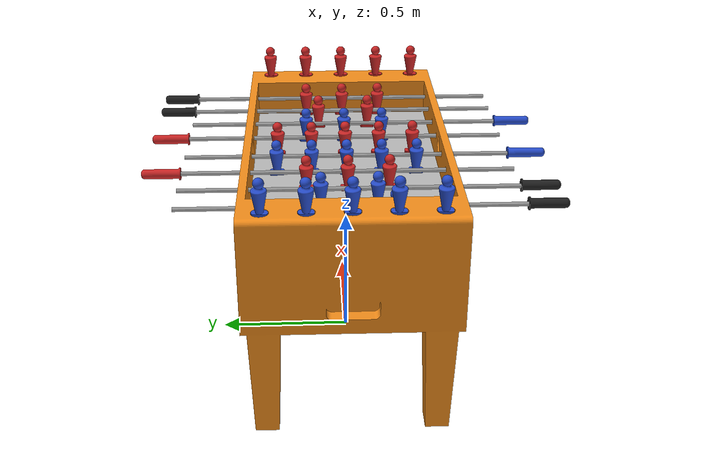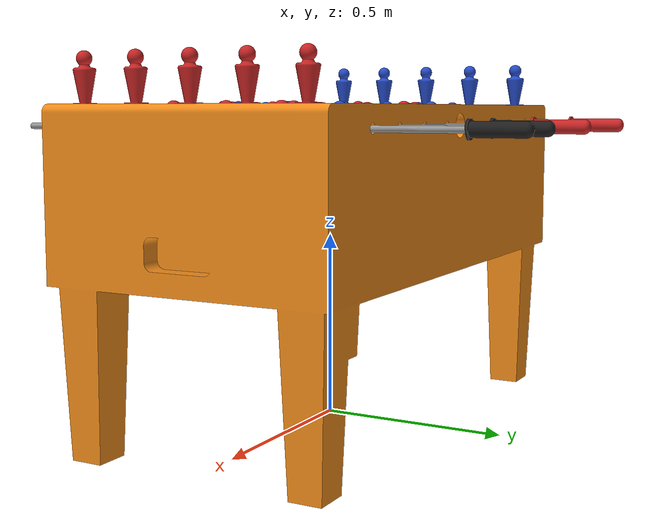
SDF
<?xml version='1.0'?>

<sdf version='1.5'>
  <model name='Foosball'>
    <static>0</static>

    <link name='table'>
      <pose>0 0 0.425 0 0 0</pose>
      <inertial>
        <pose>0 0 -1 0 0 0</pose>
        <mass>50</mass>
  </inertial>

      <visual name='table'>
        <pose>0 0 0 1.5707963267948966 0 0</pose>
        <geometry>
          <mesh>
            <uri>model://foosball/meshes/table.dae</uri>
          </mesh>
        </geometry>
        <material>
          <script>
            <uri>file://media/materials/scripts/gazebo.material</uri>
            <name>Gazebo/Orange</name>
          </script>
        </material>
      </visual>

      <!-- table collisions on each player's side -->

        <collision name="sideRed">
          <pose>0 -0.36 0.34700000000000003 0 0 0</pose>
          <geometry>
            <box>
              <size>1.1 0.02 0.15</size>
            </box>
          </geometry>
          <surface>
            <bounce>
              <restitution_coefficient>0.5</restitution_coefficient>
              <threshold>0</threshold>
            </bounce>
            <contact>
              <ode>
                <min_depth>0.0010000</min_depth>
              </ode>
            </contact>
          </surface>
        </collision>

        <collision name="sideBlue">
          <pose>0 0.36 0.34700000000000003 0 0 0</pose>
          <geometry>
            <box>
              <size>1.1 0.02 0.15</size>
            </box>
          </geometry>
          <surface>
            <bounce>
              <restitution_coefficient>0.5</restitution_coefficient>
              <threshold>0</threshold>
            </bounce>
            <contact>
              <ode>
                <min_depth>0.0010000</min_depth>
              </ode>
            </contact>
          </surface>
        </collision>

      <!-- /table side collisions -->

      <!-- table collisions on each goal side -->

        <collision name="goalRed">
          <pose>0.55 0 0.34700000000000003 0 1.5707963267948966 0</pose>
          <geometry>
            <polyline>
              <height>0.02</height>
              <point>0.075 -0.385</point>
              <point>-0.075 -0.385</point>
              <point>-0.075 0.385</point>
              <point>0.075 0.385</point>
              <point>0.075 0.09</point>
              <point>-0.0019 0.09</point>
              <point>-0.0019 -0.09</point>
              <point>0.075 -0.09</point>
            </polyline>
          </geometry>
          <surface>
            <bounce>
              <restitution_coefficient>0.5</restitution_coefficient>
              <threshold>0</threshold>
            </bounce>
            <contact>
              <ode>
                <min_depth>0.0010000</min_depth>
              </ode>
            </contact>
          </surface>
        </collision>

        <collision name="goalBlue">
          <pose>-0.55 0 0.34700000000000003 3.141592653589793 1.5707963267948966 0</pose>
          <geometry>
            <polyline>
              <height>0.02</height>
              <point>0.075 -0.385</point>
              <point>-0.075 -0.385</point>
              <point>-0.075 0.385</point>
              <point>0.075 0.385</point>
              <point>0.075 0.09</point>
              <point>-0.0019 0.09</point>
              <point>-0.0019 -0.09</point>
              <point>0.075 -0.09</point>
            </polyline>
          </geometry>
          <surface>
            <bounce>
              <restitution_coefficient>0.5</restitution_coefficient>
              <threshold>0</threshold>
            </bounce>
            <contact>
              <ode>
                <min_depth>0.0010000</min_depth>
              </ode>
            </contact>
          </surface>
        </collision>

      <!-- /table goal collisions -->

      <!-- table ground -->
      <visual name='ground'>
        <pose>0 0 0.28200000000000003 0 0 0</pose>
        <geometry>
          <box>
            <size>1.1 0.73 0.02</size>
          </box>
        </geometry>
        <material>
          <script>
            <uri>model://foosball/materials/scripts/</uri>
            <uri>model://foosball/materials/textures/</uri>
            <name>Foosball/Field</name>
          </script>
        </material>
      </visual>
      <collision name='ground'>
        <pose>0 0 0.28200000000000003 0 0 0</pose>
        <geometry>
          <box>
            <size>1.375 0.73 0.02</size>
          </box>
        </geometry>
        <surface>
          <contact>
            <ode>
              <max_vel>0.500</max_vel>
            </ode>
          </contact>
        </surface>
      </collision>
      <!-- /table ground -->

            <visual name="goal_visual_Blue_0" >
              <pose>-0.65 -0.3 0.49 0 0 0</pose>
              <geometry>
                <mesh>
                  <uri>model://foosball/meshes/player.dae</uri>
                </mesh>
              </geometry>
              <material>
                <script><name>Gazebo/Blue</name></script>
              </material>
            </visual>

            <visual name="goal_visual_Blue_1" >
              <pose>-0.65 -0.15 0.49 0 0 0</pose>
              <geometry>
                <mesh>
                  <uri>model://foosball/meshes/player.dae</uri>
                </mesh>
              </geometry>
              <material>
                <script><name>Gazebo/Blue</name></script>
              </material>
            </visual>

            <visual name="goal_visual_Blue_2" >
              <pose>-0.65 0.0 0.49 0 0 0</pose>
              <geometry>
                <mesh>
                  <uri>model://foosball/meshes/player.dae</uri>
                </mesh>
              </geometry>
              <material>
                <script><name>Gazebo/Blue</name></script>
              </material>
            </visual>

            <visual name="goal_visual_Blue_3" >
              <pose>-0.65 0.15 0.49 0 0 0</pose>
              <geometry>
                <mesh>
                  <uri>model://foosball/meshes/player.dae</uri>
                </mesh>
              </geometry>
              <material>
                <script><name>Gazebo/Blue</name></script>
              </material>
            </visual>

            <visual name="goal_visual_Blue_4" >
              <pose>-0.65 0.3 0.49 0 0 0</pose>
              <geometry>
                <mesh>
                  <uri>model://foosball/meshes/player.dae</uri>
                </mesh>
              </geometry>
              <material>
                <script><name>Gazebo/Blue</name></script>
              </material>
            </visual>

            <visual name="goal_visual_Red_0" >
              <pose>0.65 0.3 0.49 0 0 0</pose>
              <geometry>
                <mesh>
                  <uri>model://foosball/meshes/player.dae</uri>
                </mesh>
              </geometry>
              <material>
                <script><name>Gazebo/Red</name></script>
              </material>
            </visual>

            <visual name="goal_visual_Red_1" >
              <pose>0.65 0.15 0.49 0 0 0</pose>
              <geometry>
                <mesh>
                  <uri>model://foosball/meshes/player.dae</uri>
                </mesh>
              </geometry>
              <material>
                <script><name>Gazebo/Red</name></script>
              </material>
            </visual>

            <visual name="goal_visual_Red_2" >
              <pose>0.65 -0.0 0.49 0 0 0</pose>
              <geometry>
                <mesh>
                  <uri>model://foosball/meshes/player.dae</uri>
                </mesh>
              </geometry>
              <material>
                <script><name>Gazebo/Red</name></script>
              </material>
            </visual>

            <visual name="goal_visual_Red_3" >
              <pose>0.65 -0.15 0.49 0 0 0</pose>
              <geometry>
                <mesh>
                  <uri>model://foosball/meshes/player.dae</uri>
                </mesh>
              </geometry>
              <material>
                <script><name>Gazebo/Red</name></script>
              </material>
            </visual>

            <visual name="goal_visual_Red_4" >
              <pose>0.65 -0.3 0.49 0 0 0</pose>
              <geometry>
                <mesh>
                  <uri>model://foosball/meshes/player.dae</uri>
                </mesh>
              </geometry>
              <material>
                <script><name>Gazebo/Red</name></script>
              </material>
            </visual>

    </link>

    <!-- joint fixing the table to the world -->
    <joint name='table_world' type='universal'>
      <parent>world</parent>
      <child>table</child>
      <axis>
        <xyz>1 0 0</xyz>
        <limit>
          <lower>-0.03</lower>
          <upper>0.03</upper>
        </limit>
        <dynamics>
          <damping>500</damping>
        </dynamics>
      </axis>
      <axis2>
        <xyz>0 1 0</xyz>
        <limit>
          <lower>-0.03</lower>
          <upper>0.03</upper>
        </limit>
        <dynamics>
          <damping>500</damping>
        </dynamics>
      </axis2>
      <pose>0 0 0 0 0 0</pose>
    </joint>

    <!-- two teams -->

      <!-- 4 rods per team -->

        <!-- shaft bridge is a dummy link between the revolute and prismatic joints -->
        <link name="shaftBlue0_bridge">
          <pose>-0.508 0 0.8 1.5707963267948966 0 0</pose>
        </link>
        <!-- /shaft bridge -->

        <!-- shaft contains the rod and players -->
        <link name="shaftBlue0">
          <pose>-0.508 0 0.8 1.5707963267948966 0 0</pose>

          <visual name='rod'>
            <pose>0 0 0 0 0 0</pose>
            <geometry>
              <cylinder>
                <radius>0.00779907</radius>
                <length>1.2</length>
              </cylinder>
            </geometry>
            <material>
              <script>
                <uri>file://media/materials/scripts/gazebo.material</uri>
                <name>Gazebo/Grey</name>
              </script>
            </material>
          </visual>

          <visual name='handle'>
            <pose>0 0 0.6 0 -3.141592653589793 0</pose>
            <geometry>
              <mesh>
                <uri>model://foosball/meshes/handle.dae</uri>
              </mesh>
            </geometry>
            <material>
              <!-- highlight active rods -->

                <script><name>Gazebo/Black</name></script>

            </material>
          </visual>

          <collision name='rod'>
            <pose>0 0 0 0 0 0</pose>
            <geometry>
              <cylinder>
                <radius>0.00779907</radius>
                <length>1.2</length>
              </cylinder>
            </geometry>
          </collision>

          <!-- center player -->

            <visual name='player_center'>
              <pose>0 0 0 -1.5707963267948966 0 0</pose>
              <geometry>
                <mesh>
                  <uri>model://foosball/meshes/player.dae</uri>
                </mesh>
              </geometry>
              <material>
                <script><name>Gazebo/Blue</name></script>
              </material>
            </visual>

            <collision name='player_center'>
              <pose>0 -0.005 0 0 0 0</pose>
              <geometry> <box> <size>0.045 0.13 0.055</size> </box> </geometry>
            </collision>

          <!-- /center player -->

          <!-- two players between the center player and the side players -->

          <!-- /middle players -->

          <!-- side players: two players in the extremes of the rod -->

            <visual name='player_side_1'>
              <pose>0 0 0.15 -1.5707963267948966 0 0</pose>
              <geometry>
                <mesh>
                  <uri>model://foosball/meshes/player.dae</uri>
                </mesh>
              </geometry>
              <material>
                <script><name>Gazebo/Blue</name></script>
              </material>
            </visual>

            <collision name='player_side_1'>
              <pose>0 -0.005 0.15 0 0 0</pose>
              <geometry> <box> <size>0.045 0.13 0.055</size> </box> </geometry>
            </collision>

            <visual name='player_side_2'>
              <pose>0 0 -0.15 -1.5707963267948966 0 0</pose>
              <geometry>
                <mesh>
                  <uri>model://foosball/meshes/player.dae</uri>
                </mesh>
              </geometry>
              <material>
                <script><name>Gazebo/Blue</name></script>
              </material>
            </visual>

            <collision name='player_side_2'>
              <pose>0 -0.005 -0.15 0 0 0</pose>
              <geometry> <box> <size>0.045 0.13 0.055</size> </box> </geometry>
            </collision>

          <!-- /side players -->

        </link>
        <!-- /shaft -->

        <!-- prismatic joint -->
        <joint name="transBlue0" type="prismatic">
          <pose> 0 0 0 0 -3.141592653589793 0</pose>
          <parent>world</parent>
          <child>shaftBlue0_bridge</child>
          <axis>
            <xyz>0 0 1</xyz>
            <limit>
              <lower>-0.18</lower>
              <upper>0.18</upper>
            </limit>
          </axis>
        </joint>
        <!-- /prismatic joint -->

        <!-- /revolute joint -->
        <joint name="rotBlue0" type="revolute">
          <pose> 0 0 0 0 -3.141592653589793 0</pose>
          <parent>shaftBlue0_bridge</parent>
          <child>shaftBlue0</child>
          <axis>
            <xyz>0 0 1</xyz>
            <limit>
              <lower>-1000</lower>
              <upper>1000</upper>
            </limit>
          </axis>
        </joint>
        <!-- /revolute joint -->

        <!-- shaft bridge is a dummy link between the revolute and prismatic joints -->
        <link name="shaftBlue1_bridge">
          <pose>-0.3675 0 0.8 1.5707963267948966 0 0</pose>
        </link>
        <!-- /shaft bridge -->

        <!-- shaft contains the rod and players -->
        <link name="shaftBlue1">
          <pose>-0.3675 0 0.8 1.5707963267948966 0 0</pose>

          <visual name='rod'>
            <pose>0 0 0 0 0 0</pose>
            <geometry>
              <cylinder>
                <radius>0.00779907</radius>
                <length>1.2</length>
              </cylinder>
            </geometry>
            <material>
              <script>
                <uri>file://media/materials/scripts/gazebo.material</uri>
                <name>Gazebo/Grey</name>
              </script>
            </material>
          </visual>

          <visual name='handle'>
            <pose>0 0 0.6 0 -3.141592653589793 0</pose>
            <geometry>
              <mesh>
                <uri>model://foosball/meshes/handle.dae</uri>
              </mesh>
            </geometry>
            <material>
              <!-- highlight active rods -->

                <script><name>Gazebo/Black</name></script>

            </material>
          </visual>

          <collision name='rod'>
            <pose>0 0 0 0 0 0</pose>
            <geometry>
              <cylinder>
                <radius>0.00779907</radius>
                <length>1.2</length>
              </cylinder>
            </geometry>
          </collision>

          <!-- center player -->

          <!-- /center player -->

          <!-- two players between the center player and the side players -->

          <!-- /middle players -->

          <!-- side players: two players in the extremes of the rod -->

            <visual name='player_side_1'>
              <pose>0 0 0.1 -1.5707963267948966 0 0</pose>
              <geometry>
                <mesh>
                  <uri>model://foosball/meshes/player.dae</uri>
                </mesh>
              </geometry>
              <material>
                <script><name>Gazebo/Blue</name></script>
              </material>
            </visual>

            <collision name='player_side_1'>
              <pose>0 -0.005 0.1 0 0 0</pose>
              <geometry> <box> <size>0.045 0.13 0.055</size> </box> </geometry>
            </collision>

            <visual name='player_side_2'>
              <pose>0 0 -0.1 -1.5707963267948966 0 0</pose>
              <geometry>
                <mesh>
                  <uri>model://foosball/meshes/player.dae</uri>
                </mesh>
              </geometry>
              <material>
                <script><name>Gazebo/Blue</name></script>
              </material>
            </visual>

            <collision name='player_side_2'>
              <pose>0 -0.005 -0.1 0 0 0</pose>
              <geometry> <box> <size>0.045 0.13 0.055</size> </box> </geometry>
            </collision>

          <!-- /side players -->

        </link>
        <!-- /shaft -->

        <!-- prismatic joint -->
        <joint name="transBlue1" type="prismatic">
          <pose> 0 0 0 0 -3.141592653589793 0</pose>
          <parent>world</parent>
          <child>shaftBlue1_bridge</child>
          <axis>
            <xyz>0 0 1</xyz>
            <limit>
              <lower>-0.23</lower>
              <upper>0.23</upper>
            </limit>
          </axis>
        </joint>
        <!-- /prismatic joint -->

        <!-- /revolute joint -->
        <joint name="rotBlue1" type="revolute">
          <pose> 0 0 0 0 -3.141592653589793 0</pose>
          <parent>shaftBlue1_bridge</parent>
          <child>shaftBlue1</child>
          <axis>
            <xyz>0 0 1</xyz>
            <limit>
              <lower>-1000</lower>
              <upper>1000</upper>
            </limit>
          </axis>
        </joint>
        <!-- /revolute joint -->

        <!-- shaft bridge is a dummy link between the revolute and prismatic joints -->
        <link name="shaftBlue2_bridge">
          <pose>-0.087 0 0.8 1.5707963267948966 0 0</pose>
        </link>
        <!-- /shaft bridge -->

        <!-- shaft contains the rod and players -->
        <link name="shaftBlue2">
          <pose>-0.087 0 0.8 1.5707963267948966 0 0</pose>

          <visual name='rod'>
            <pose>0 0 0 0 0 0</pose>
            <geometry>
              <cylinder>
                <radius>0.00779907</radius>
                <length>1.2</length>
              </cylinder>
            </geometry>
            <material>
              <script>
                <uri>file://media/materials/scripts/gazebo.material</uri>
                <name>Gazebo/Grey</name>
              </script>
            </material>
          </visual>

          <visual name='handle'>
            <pose>0 0 0.6 0 -3.141592653589793 0</pose>
            <geometry>
              <mesh>
                <uri>model://foosball/meshes/handle.dae</uri>
              </mesh>
            </geometry>
            <material>
              <!-- highlight active rods -->

                <script><name>Gazebo/Blue</name></script>

            </material>
          </visual>

          <collision name='rod'>
            <pose>0 0 0 0 0 0</pose>
            <geometry>
              <cylinder>
                <radius>0.00779907</radius>
                <length>1.2</length>
              </cylinder>
            </geometry>
          </collision>

          <!-- center player -->

            <visual name='player_center'>
              <pose>0 0 0 -1.5707963267948966 0 0</pose>
              <geometry>
                <mesh>
                  <uri>model://foosball/meshes/player.dae</uri>
                </mesh>
              </geometry>
              <material>
                <script><name>Gazebo/Blue</name></script>
              </material>
            </visual>

            <collision name='player_center'>
              <pose>0 -0.005 0 0 0 0</pose>
              <geometry> <box> <size>0.045 0.13 0.055</size> </box> </geometry>
            </collision>

          <!-- /center player -->

          <!-- two players between the center player and the side players -->

            <visual name='player_mid_1'>
              <pose>0 0 0.26 -1.5707963267948966 0 0</pose>
              <geometry>
                <mesh>
                  <uri>model://foosball/meshes/player.dae</uri>
                </mesh>
              </geometry>
              <material>
                <script>
                  <name>Gazebo/Blue</name>
                </script>
              </material>
            </visual>

            <collision name='player_mid_1'>
              <pose>0 -0.005 0.26 0 0 0</pose>
              <geometry> <box> <size>0.045 0.13 0.055</size> </box> </geometry>
            </collision>

            <visual name='player_mid_2'>
              <pose>0 0 -0.26 -1.5707963267948966 0 0</pose>
              <geometry>
                <mesh>
                  <uri>model://foosball/meshes/player.dae</uri>
                </mesh>
              </geometry>
              <material>
                <script><name>Gazebo/Blue</name></script>
              </material>
            </visual>

            <collision name='player_mid_2'>
              <pose>0 -0.005 -0.26 0 0 0</pose>
              <geometry> <box> <size>0.045 0.13 0.055</size> </box> </geometry>
            </collision>

          <!-- /middle players -->

          <!-- side players: two players in the extremes of the rod -->

            <visual name='player_side_1'>
              <pose>0 0 0.13 -1.5707963267948966 0 0</pose>
              <geometry>
                <mesh>
                  <uri>model://foosball/meshes/player.dae</uri>
                </mesh>
              </geometry>
              <material>
                <script><name>Gazebo/Blue</name></script>
              </material>
            </visual>

            <collision name='player_side_1'>
              <pose>0 -0.005 0.13 0 0 0</pose>
              <geometry> <box> <size>0.045 0.13 0.055</size> </box> </geometry>
            </collision>

            <visual name='player_side_2'>
              <pose>0 0 -0.13 -1.5707963267948966 0 0</pose>
              <geometry>
                <mesh>
                  <uri>model://foosball/meshes/player.dae</uri>
                </mesh>
              </geometry>
              <material>
                <script><name>Gazebo/Blue</name></script>
              </material>
            </visual>

            <collision name='player_side_2'>
              <pose>0 -0.005 -0.13 0 0 0</pose>
              <geometry> <box> <size>0.045 0.13 0.055</size> </box> </geometry>
            </collision>

          <!-- /side players -->

        </link>
        <!-- /shaft -->

        <!-- prismatic joint -->
        <joint name="transBlue2" type="prismatic">
          <pose> 0 0 0 0 -3.141592653589793 0</pose>
          <parent>world</parent>
          <child>shaftBlue2_bridge</child>
          <axis>
            <xyz>0 0 1</xyz>
            <limit>
              <lower>-0.07</lower>
              <upper>0.07</upper>
            </limit>
          </axis>
        </joint>
        <!-- /prismatic joint -->

        <!-- /revolute joint -->
        <joint name="rotBlue2" type="revolute">
          <pose> 0 0 0 0 -3.141592653589793 0</pose>
          <parent>shaftBlue2_bridge</parent>
          <child>shaftBlue2</child>
          <axis>
            <xyz>0 0 1</xyz>
            <limit>
              <lower>-1000</lower>
              <upper>1000</upper>
            </limit>
          </axis>
        </joint>
        <!-- /revolute joint -->

        <!-- shaft bridge is a dummy link between the revolute and prismatic joints -->
        <link name="shaftBlue3_bridge">
          <pose>0.227 0 0.8 1.5707963267948966 0 0</pose>
        </link>
        <!-- /shaft bridge -->

        <!-- shaft contains the rod and players -->
        <link name="shaftBlue3">
          <pose>0.227 0 0.8 1.5707963267948966 0 0</pose>

          <visual name='rod'>
            <pose>0 0 0 0 0 0</pose>
            <geometry>
              <cylinder>
                <radius>0.00779907</radius>
                <length>1.2</length>
              </cylinder>
            </geometry>
            <material>
              <script>
                <uri>file://media/materials/scripts/gazebo.material</uri>
                <name>Gazebo/Grey</name>
              </script>
            </material>
          </visual>

          <visual name='handle'>
            <pose>0 0 0.6 0 -3.141592653589793 0</pose>
            <geometry>
              <mesh>
                <uri>model://foosball/meshes/handle.dae</uri>
              </mesh>
            </geometry>
            <material>
              <!-- highlight active rods -->

                <script><name>Gazebo/Blue</name></script>

            </material>
          </visual>

          <collision name='rod'>
            <pose>0 0 0 0 0 0</pose>
            <geometry>
              <cylinder>
                <radius>0.00779907</radius>
                <length>1.2</length>
              </cylinder>
            </geometry>
          </collision>

          <!-- center player -->

            <visual name='player_center'>
              <pose>0 0 0 -1.5707963267948966 0 0</pose>
              <geometry>
                <mesh>
                  <uri>model://foosball/meshes/player.dae</uri>
                </mesh>
              </geometry>
              <material>
                <script><name>Gazebo/Blue</name></script>
              </material>
            </visual>

            <collision name='player_center'>
              <pose>0 -0.005 0 0 0 0</pose>
              <geometry> <box> <size>0.045 0.13 0.055</size> </box> </geometry>
            </collision>

          <!-- /center player -->

          <!-- two players between the center player and the side players -->

          <!-- /middle players -->

          <!-- side players: two players in the extremes of the rod -->

            <visual name='player_side_1'>
              <pose>0 0 0.15 -1.5707963267948966 0 0</pose>
              <geometry>
                <mesh>
                  <uri>model://foosball/meshes/player.dae</uri>
                </mesh>
              </geometry>
              <material>
                <script><name>Gazebo/Blue</name></script>
              </material>
            </visual>

            <collision name='player_side_1'>
              <pose>0 -0.005 0.15 0 0 0</pose>
              <geometry> <box> <size>0.045 0.13 0.055</size> </box> </geometry>
            </collision>

            <visual name='player_side_2'>
              <pose>0 0 -0.15 -1.5707963267948966 0 0</pose>
              <geometry>
                <mesh>
                  <uri>model://foosball/meshes/player.dae</uri>
                </mesh>
              </geometry>
              <material>
                <script><name>Gazebo/Blue</name></script>
              </material>
            </visual>

            <collision name='player_side_2'>
              <pose>0 -0.005 -0.15 0 0 0</pose>
              <geometry> <box> <size>0.045 0.13 0.055</size> </box> </geometry>
            </collision>

          <!-- /side players -->

        </link>
        <!-- /shaft -->

        <!-- prismatic joint -->
        <joint name="transBlue3" type="prismatic">
          <pose> 0 0 0 0 -3.141592653589793 0</pose>
          <parent>world</parent>
          <child>shaftBlue3_bridge</child>
          <axis>
            <xyz>0 0 1</xyz>
            <limit>
              <lower>-0.18</lower>
              <upper>0.18</upper>
            </limit>
          </axis>
        </joint>
        <!-- /prismatic joint -->

        <!-- /revolute joint -->
        <joint name="rotBlue3" type="revolute">
          <pose> 0 0 0 0 -3.141592653589793 0</pose>
          <parent>shaftBlue3_bridge</parent>
          <child>shaftBlue3</child>
          <axis>
            <xyz>0 0 1</xyz>
            <limit>
              <lower>-1000</lower>
              <upper>1000</upper>
            </limit>
          </axis>
        </joint>
        <!-- /revolute joint -->

      <!-- /shafts -->

      <!-- 4 rods per team -->

        <!-- shaft bridge is a dummy link between the revolute and prismatic joints -->
        <link name="shaftRed0_bridge">
          <pose>0.508 0 0.8 1.5707963267948966 0 0</pose>
        </link>
        <!-- /shaft bridge -->

        <!-- shaft contains the rod and players -->
        <link name="shaftRed0">
          <pose>0.508 0 0.8 1.5707963267948966 0 0</pose>

          <visual name='rod'>
            <pose>0 0 0 0 0 0</pose>
            <geometry>
              <cylinder>
                <radius>0.00779907</radius>
                <length>1.2</length>
              </cylinder>
            </geometry>
            <material>
              <script>
                <uri>file://media/materials/scripts/gazebo.material</uri>
                <name>Gazebo/Grey</name>
              </script>
            </material>
          </visual>

          <visual name='handle'>
            <pose>0 0 -0.6 0 0 0</pose>
            <geometry>
              <mesh>
                <uri>model://foosball/meshes/handle.dae</uri>
              </mesh>
            </geometry>
            <material>
              <!-- highlight active rods -->

                <script><name>Gazebo/Black</name></script>

            </material>
          </visual>

          <collision name='rod'>
            <pose>0 0 0 0 0 0</pose>
            <geometry>
              <cylinder>
                <radius>0.00779907</radius>
                <length>1.2</length>
              </cylinder>
            </geometry>
          </collision>

          <!-- center player -->

            <visual name='player_center'>
              <pose>0 0 0 -1.5707963267948966 0 0</pose>
              <geometry>
                <mesh>
                  <uri>model://foosball/meshes/player.dae</uri>
                </mesh>
              </geometry>
              <material>
                <script><name>Gazebo/Red</name></script>
              </material>
            </visual>

            <collision name='player_center'>
              <pose>0 -0.005 0 0 0 0</pose>
              <geometry> <box> <size>0.045 0.13 0.055</size> </box> </geometry>
            </collision>

          <!-- /center player -->

          <!-- two players between the center player and the side players -->

          <!-- /middle players -->

          <!-- side players: two players in the extremes of the rod -->

            <visual name='player_side_1'>
              <pose>0 0 0.15 -1.5707963267948966 0 0</pose>
              <geometry>
                <mesh>
                  <uri>model://foosball/meshes/player.dae</uri>
                </mesh>
              </geometry>
              <material>
                <script><name>Gazebo/Red</name></script>
              </material>
            </visual>

            <collision name='player_side_1'>
              <pose>0 -0.005 0.15 0 0 0</pose>
              <geometry> <box> <size>0.045 0.13 0.055</size> </box> </geometry>
            </collision>

            <visual name='player_side_2'>
              <pose>0 0 -0.15 -1.5707963267948966 0 0</pose>
              <geometry>
                <mesh>
                  <uri>model://foosball/meshes/player.dae</uri>
                </mesh>
              </geometry>
              <material>
                <script><name>Gazebo/Red</name></script>
              </material>
            </visual>

            <collision name='player_side_2'>
              <pose>0 -0.005 -0.15 0 0 0</pose>
              <geometry> <box> <size>0.045 0.13 0.055</size> </box> </geometry>
            </collision>

          <!-- /side players -->

        </link>
        <!-- /shaft -->

        <!-- prismatic joint -->
        <joint name="transRed0" type="prismatic">
          <pose> 0 0 0 0 0 0</pose>
          <parent>world</parent>
          <child>shaftRed0_bridge</child>
          <axis>
            <xyz>0 0 1</xyz>
            <limit>
              <lower>-0.18</lower>
              <upper>0.18</upper>
            </limit>
          </axis>
        </joint>
        <!-- /prismatic joint -->

        <!-- /revolute joint -->
        <joint name="rotRed0" type="revolute">
          <pose> 0 0 0 0 0 0</pose>
          <parent>shaftRed0_bridge</parent>
          <child>shaftRed0</child>
          <axis>
            <xyz>0 0 1</xyz>
            <limit>
              <lower>-1000</lower>
              <upper>1000</upper>
            </limit>
          </axis>
        </joint>
        <!-- /revolute joint -->

        <!-- shaft bridge is a dummy link between the revolute and prismatic joints -->
        <link name="shaftRed1_bridge">
          <pose>0.3675 0 0.8 1.5707963267948966 0 0</pose>
        </link>
        <!-- /shaft bridge -->

        <!-- shaft contains the rod and players -->
        <link name="shaftRed1">
          <pose>0.3675 0 0.8 1.5707963267948966 0 0</pose>

          <visual name='rod'>
            <pose>0 0 0 0 0 0</pose>
            <geometry>
              <cylinder>
                <radius>0.00779907</radius>
                <length>1.2</length>
              </cylinder>
            </geometry>
            <material>
              <script>
                <uri>file://media/materials/scripts/gazebo.material</uri>
                <name>Gazebo/Grey</name>
              </script>
            </material>
          </visual>

          <visual name='handle'>
            <pose>0 0 -0.6 0 0 0</pose>
            <geometry>
              <mesh>
                <uri>model://foosball/meshes/handle.dae</uri>
              </mesh>
            </geometry>
            <material>
              <!-- highlight active rods -->

                <script><name>Gazebo/Black</name></script>

            </material>
          </visual>

          <collision name='rod'>
            <pose>0 0 0 0 0 0</pose>
            <geometry>
              <cylinder>
                <radius>0.00779907</radius>
                <length>1.2</length>
              </cylinder>
            </geometry>
          </collision>

          <!-- center player -->

          <!-- /center player -->

          <!-- two players between the center player and the side players -->

          <!-- /middle players -->

          <!-- side players: two players in the extremes of the rod -->

            <visual name='player_side_1'>
              <pose>0 0 0.1 -1.5707963267948966 0 0</pose>
              <geometry>
                <mesh>
                  <uri>model://foosball/meshes/player.dae</uri>
                </mesh>
              </geometry>
              <material>
                <script><name>Gazebo/Red</name></script>
              </material>
            </visual>

            <collision name='player_side_1'>
              <pose>0 -0.005 0.1 0 0 0</pose>
              <geometry> <box> <size>0.045 0.13 0.055</size> </box> </geometry>
            </collision>

            <visual name='player_side_2'>
              <pose>0 0 -0.1 -1.5707963267948966 0 0</pose>
              <geometry>
                <mesh>
                  <uri>model://foosball/meshes/player.dae</uri>
                </mesh>
              </geometry>
              <material>
                <script><name>Gazebo/Red</name></script>
              </material>
            </visual>

            <collision name='player_side_2'>
              <pose>0 -0.005 -0.1 0 0 0</pose>
              <geometry> <box> <size>0.045 0.13 0.055</size> </box> </geometry>
            </collision>

          <!-- /side players -->

        </link>
        <!-- /shaft -->

        <!-- prismatic joint -->
        <joint name="transRed1" type="prismatic">
          <pose> 0 0 0 0 0 0</pose>
          <parent>world</parent>
          <child>shaftRed1_bridge</child>
          <axis>
            <xyz>0 0 1</xyz>
            <limit>
              <lower>-0.23</lower>
              <upper>0.23</upper>
            </limit>
          </axis>
        </joint>
        <!-- /prismatic joint -->

        <!-- /revolute joint -->
        <joint name="rotRed1" type="revolute">
          <pose> 0 0 0 0 0 0</pose>
          <parent>shaftRed1_bridge</parent>
          <child>shaftRed1</child>
          <axis>
            <xyz>0 0 1</xyz>
            <limit>
              <lower>-1000</lower>
              <upper>1000</upper>
            </limit>
          </axis>
        </joint>
        <!-- /revolute joint -->

        <!-- shaft bridge is a dummy link between the revolute and prismatic joints -->
        <link name="shaftRed2_bridge">
          <pose>0.087 0 0.8 1.5707963267948966 0 0</pose>
        </link>
        <!-- /shaft bridge -->

        <!-- shaft contains the rod and players -->
        <link name="shaftRed2">
          <pose>0.087 0 0.8 1.5707963267948966 0 0</pose>

          <visual name='rod'>
            <pose>0 0 0 0 0 0</pose>
            <geometry>
              <cylinder>
                <radius>0.00779907</radius>
                <length>1.2</length>
              </cylinder>
            </geometry>
            <material>
              <script>
                <uri>file://media/materials/scripts/gazebo.material</uri>
                <name>Gazebo/Grey</name>
              </script>
            </material>
          </visual>

          <visual name='handle'>
            <pose>0 0 -0.6 0 0 0</pose>
            <geometry>
              <mesh>
                <uri>model://foosball/meshes/handle.dae</uri>
              </mesh>
            </geometry>
            <material>
              <!-- highlight active rods -->

                <script><name>Gazebo/Red</name></script>

            </material>
          </visual>

          <collision name='rod'>
            <pose>0 0 0 0 0 0</pose>
            <geometry>
              <cylinder>
                <radius>0.00779907</radius>
                <length>1.2</length>
              </cylinder>
            </geometry>
          </collision>

          <!-- center player -->

            <visual name='player_center'>
              <pose>0 0 0 -1.5707963267948966 0 0</pose>
              <geometry>
                <mesh>
                  <uri>model://foosball/meshes/player.dae</uri>
                </mesh>
              </geometry>
              <material>
                <script><name>Gazebo/Red</name></script>
              </material>
            </visual>

            <collision name='player_center'>
              <pose>0 -0.005 0 0 0 0</pose>
              <geometry> <box> <size>0.045 0.13 0.055</size> </box> </geometry>
            </collision>

          <!-- /center player -->

          <!-- two players between the center player and the side players -->

            <visual name='player_mid_1'>
              <pose>0 0 0.26 -1.5707963267948966 0 0</pose>
              <geometry>
                <mesh>
                  <uri>model://foosball/meshes/player.dae</uri>
                </mesh>
              </geometry>
              <material>
                <script>
                  <name>Gazebo/Red</name>
                </script>
              </material>
            </visual>

            <collision name='player_mid_1'>
              <pose>0 -0.005 0.26 0 0 0</pose>
              <geometry> <box> <size>0.045 0.13 0.055</size> </box> </geometry>
            </collision>

            <visual name='player_mid_2'>
              <pose>0 0 -0.26 -1.5707963267948966 0 0</pose>
              <geometry>
                <mesh>
                  <uri>model://foosball/meshes/player.dae</uri>
                </mesh>
              </geometry>
              <material>
                <script><name>Gazebo/Red</name></script>
              </material>
            </visual>

            <collision name='player_mid_2'>
              <pose>0 -0.005 -0.26 0 0 0</pose>
              <geometry> <box> <size>0.045 0.13 0.055</size> </box> </geometry>
            </collision>

          <!-- /middle players -->

          <!-- side players: two players in the extremes of the rod -->

            <visual name='player_side_1'>
              <pose>0 0 0.13 -1.5707963267948966 0 0</pose>
              <geometry>
                <mesh>
                  <uri>model://foosball/meshes/player.dae</uri>
                </mesh>
              </geometry>
              <material>
                <script><name>Gazebo/Red</name></script>
              </material>
            </visual>

            <collision name='player_side_1'>
              <pose>0 -0.005 0.13 0 0 0</pose>
              <geometry> <box> <size>0.045 0.13 0.055</size> </box> </geometry>
            </collision>

            <visual name='player_side_2'>
              <pose>0 0 -0.13 -1.5707963267948966 0 0</pose>
              <geometry>
                <mesh>
                  <uri>model://foosball/meshes/player.dae</uri>
                </mesh>
              </geometry>
              <material>
                <script><name>Gazebo/Red</name></script>
              </material>
            </visual>

            <collision name='player_side_2'>
              <pose>0 -0.005 -0.13 0 0 0</pose>
              <geometry> <box> <size>0.045 0.13 0.055</size> </box> </geometry>
            </collision>

          <!-- /side players -->

        </link>
        <!-- /shaft -->

        <!-- prismatic joint -->
        <joint name="transRed2" type="prismatic">
          <pose> 0 0 0 0 0 0</pose>
          <parent>world</parent>
          <child>shaftRed2_bridge</child>
          <axis>
            <xyz>0 0 1</xyz>
            <limit>
              <lower>-0.07</lower>
              <upper>0.07</upper>
            </limit>
          </axis>
        </joint>
        <!-- /prismatic joint -->

        <!-- /revolute joint -->
        <joint name="rotRed2" type="revolute">
          <pose> 0 0 0 0 0 0</pose>
          <parent>shaftRed2_bridge</parent>
          <child>shaftRed2</child>
          <axis>
            <xyz>0 0 1</xyz>
            <limit>
              <lower>-1000</lower>
              <upper>1000</upper>
            </limit>
          </axis>
        </joint>
        <!-- /revolute joint -->

        <!-- shaft bridge is a dummy link between the revolute and prismatic joints -->
        <link name="shaftRed3_bridge">
          <pose>-0.227 0 0.8 1.5707963267948966 0 0</pose>
        </link>
        <!-- /shaft bridge -->

        <!-- shaft contains the rod and players -->
        <link name="shaftRed3">
          <pose>-0.227 0 0.8 1.5707963267948966 0 0</pose>

          <visual name='rod'>
            <pose>0 0 0 0 0 0</pose>
            <geometry>
              <cylinder>
                <radius>0.00779907</radius>
                <length>1.2</length>
              </cylinder>
            </geometry>
            <material>
              <script>
                <uri>file://media/materials/scripts/gazebo.material</uri>
                <name>Gazebo/Grey</name>
              </script>
            </material>
          </visual>

          <visual name='handle'>
            <pose>0 0 -0.6 0 0 0</pose>
            <geometry>
              <mesh>
                <uri>model://foosball/meshes/handle.dae</uri>
              </mesh>
            </geometry>
            <material>
              <!-- highlight active rods -->

                <script><name>Gazebo/Red</name></script>

            </material>
          </visual>

          <collision name='rod'>
            <pose>0 0 0 0 0 0</pose>
            <geometry>
              <cylinder>
                <radius>0.00779907</radius>
                <length>1.2</length>
              </cylinder>
            </geometry>
          </collision>

          <!-- center player -->

            <visual name='player_center'>
              <pose>0 0 0 -1.5707963267948966 0 0</pose>
              <geometry>
                <mesh>
                  <uri>model://foosball/meshes/player.dae</uri>
                </mesh>
              </geometry>
              <material>
                <script><name>Gazebo/Red</name></script>
              </material>
            </visual>

            <collision name='player_center'>
              <pose>0 -0.005 0 0 0 0</pose>
              <geometry> <box> <size>0.045 0.13 0.055</size> </box> </geometry>
            </collision>

          <!-- /center player -->

          <!-- two players between the center player and the side players -->

          <!-- /middle players -->

          <!-- side players: two players in the extremes of the rod -->

            <visual name='player_side_1'>
              <pose>0 0 0.15 -1.5707963267948966 0 0</pose>
              <geometry>
                <mesh>
                  <uri>model://foosball/meshes/player.dae</uri>
                </mesh>
              </geometry>
              <material>
                <script><name>Gazebo/Red</name></script>
              </material>
            </visual>

            <collision name='player_side_1'>
              <pose>0 -0.005 0.15 0 0 0</pose>
              <geometry> <box> <size>0.045 0.13 0.055</size> </box> </geometry>
            </collision>

            <visual name='player_side_2'>
              <pose>0 0 -0.15 -1.5707963267948966 0 0</pose>
              <geometry>
                <mesh>
                  <uri>model://foosball/meshes/player.dae</uri>
                </mesh>
              </geometry>
              <material>
                <script><name>Gazebo/Red</name></script>
              </material>
            </visual>

            <collision name='player_side_2'>
              <pose>0 -0.005 -0.15 0 0 0</pose>
              <geometry> <box> <size>0.045 0.13 0.055</size> </box> </geometry>
            </collision>

          <!-- /side players -->

        </link>
        <!-- /shaft -->

        <!-- prismatic joint -->
        <joint name="transRed3" type="prismatic">
          <pose> 0 0 0 0 0 0</pose>
          <parent>world</parent>
          <child>shaftRed3_bridge</child>
          <axis>
            <xyz>0 0 1</xyz>
            <limit>
              <lower>-0.18</lower>
              <upper>0.18</upper>
            </limit>
          </axis>
        </joint>
        <!-- /prismatic joint -->

        <!-- /revolute joint -->
        <joint name="rotRed3" type="revolute">
          <pose> 0 0 0 0 0 0</pose>
          <parent>shaftRed3_bridge</parent>
          <child>shaftRed3</child>
          <axis>
            <xyz>0 0 1</xyz>
            <limit>
              <lower>-1000</lower>
              <upper>1000</upper>
            </limit>
          </axis>
        </joint>
        <!-- /revolute joint -->

      <!-- /shafts -->

    <!-- /teams -->

  </model>
</sdf>
